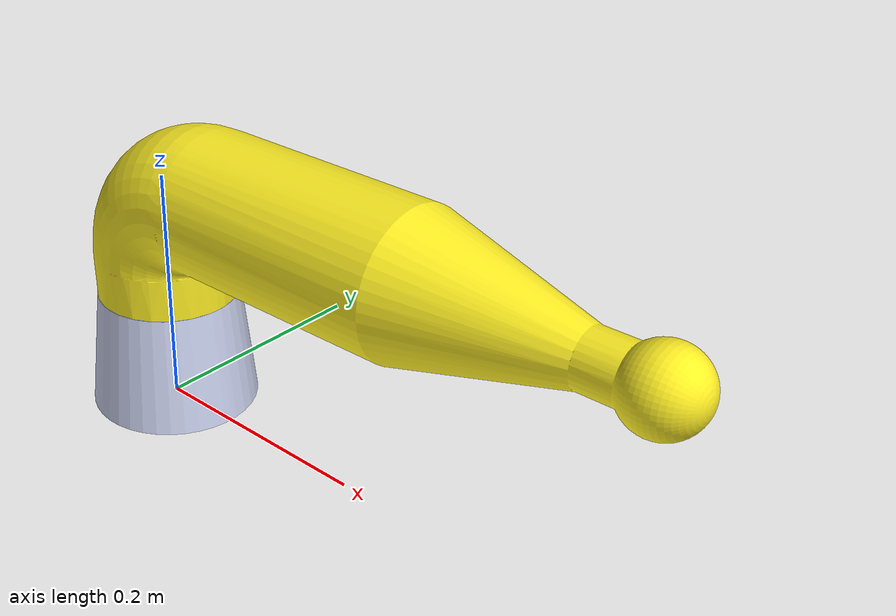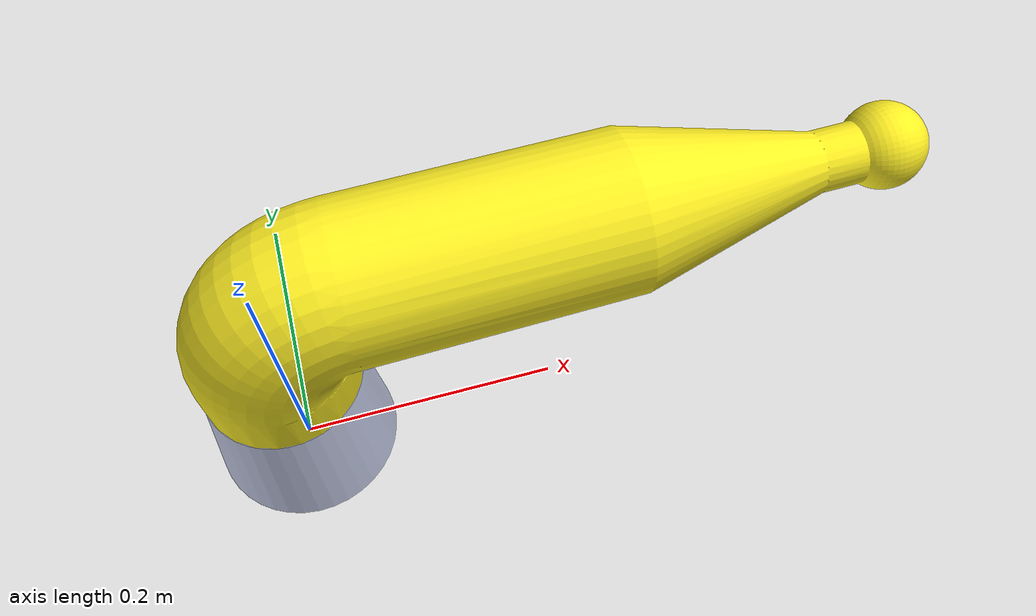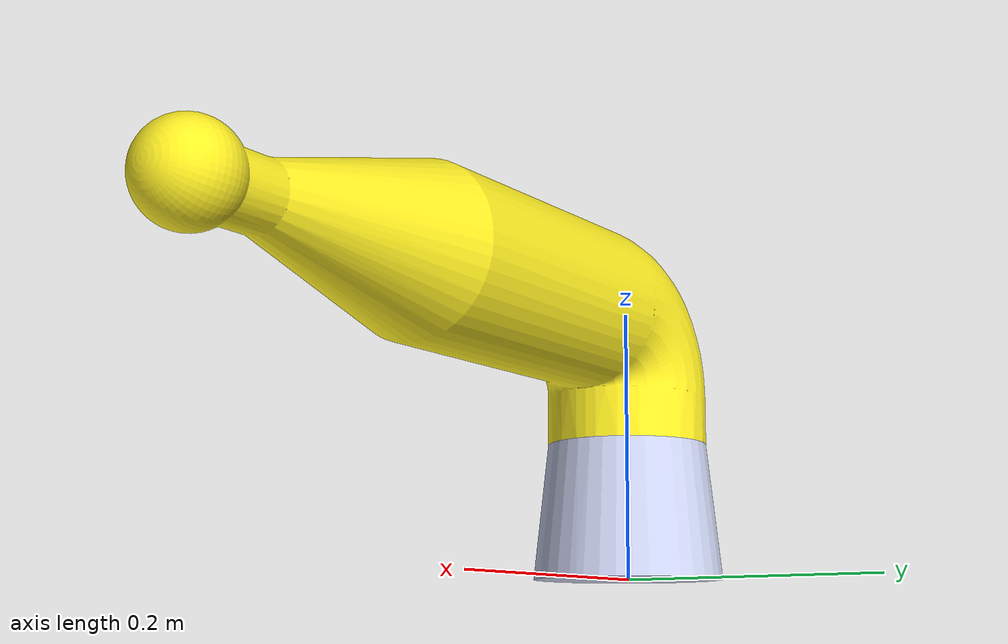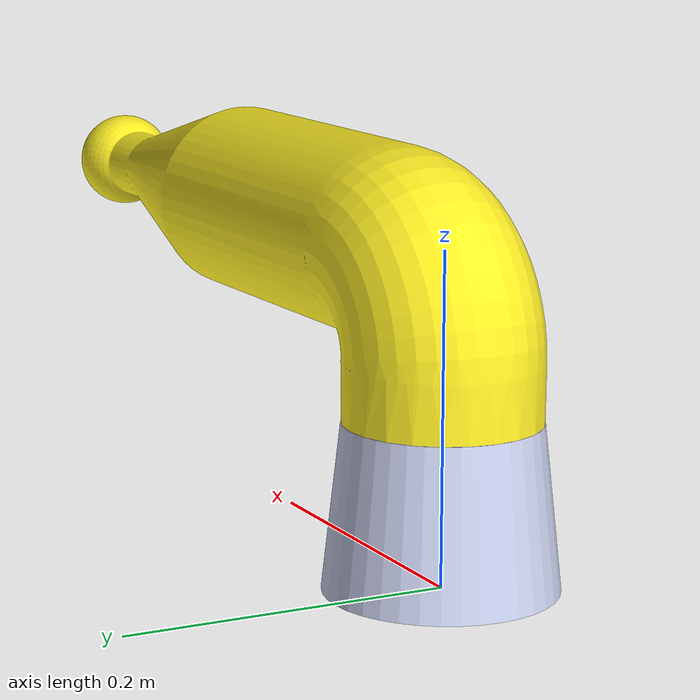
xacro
<?xml version="1.0" ?>
<robot name="onelink_robot" xmlns:xacro="http://wiki.ros.org/xacro">
  <!-- TX90 -->
  <xacro:include filename="$(find onelink_robot)/urdf/onelink_robot_macro.xacro"/>

  <xacro:onelink_robot prefix=""/>

  <!-- Fix robot to Gazebo world -->
  <link name="world"/>

  <joint name="world-base_link-fixed" type="fixed">
    <parent link="world"/>
    <child link="base_link"/>
    <origin xyz="0.0 0.0 0.0" rpy="0.0 0.0 0.0" />
  </joint>
</robot>

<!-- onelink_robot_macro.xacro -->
<robot xmlns:xacro="http://wiki.ros.org/xacro">
<xacro:include filename="$(find onelink_robot)/urdf/onelink_robot_support_macro.xacro"/>
<xacro:macro name="onelink_robot_supprot" params="prefix">

	<xacro:onelink_robot prefix="${prefix}" />

  <!-- transmission list -->
  <transmission name="${prefix}tran1">
    <robotNamespace>/${prefix}</robotNamespace>
    <type>transmission_interface/SimpleTransmission</type>
    <joint name="${prefix}joint_1">
      <hardwareInterface>hardware_interface/PositionJointInterface</hardwareInterface>
    </joint>
    <actuator name="${prefix}motor1">
      <mechanicalReduction>1</mechanicalReduction>
    </actuator>
  </transmission>

  <gazebo reference="${prefix}base_link">
    <material>Gazebo/Yellow</material>
    <turnGravityOff>true</turnGravityOff>
  </gazebo>
  <gazebo reference="${prefix}link_1">
    <material>Gazebo/Yellow</material>
    <turnGravityOff>true</turnGravityOff>
  </gazebo>

  <gazebo>
    <plugin name="gazebo_ros_control" filename="libgazebo_ros_control.so">
      <robotNamespace>/${prefix}</robotNamespace>
      <robotSimType>gazebo_ros_control/DefaultRobotHWSim</robotSimType>
    </plugin>
  </gazebo>
  </xacro:macro>
</robot>

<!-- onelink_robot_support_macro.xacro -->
<robot xmlns:xacro="http://wiki.ros.org/xacro">
  <xacro:macro name="onelink_robot" params="prefix">
    <!-- links: main serial chain -->
  <link name="${prefix}base_link">
      <inertial>
        <origin xyz="8.7018E-07 2.7995E-08 0.047164" rpy="0 0 0" />
        <mass value="1.3101" />
        <inertia ixx="0.0024623" ixy="3.2088E-09" ixz="2.422E-09"
          iyy="0.0024625" iyz="-4.6557E-09"
          izz="0.0027581" />
      </inertial>
      <visual>
        <origin xyz="0 0 0" rpy="0 0 0" />
        <geometry>
          <mesh filename="package://onelink_robot/meshes/visual/base_link.STL" />
        </geometry>
        <material
          name="">
          <color rgba="0.79216 0.81961 0.93333 1" />
        </material>
      </visual>
      <collision>
        <origin xyz="0 0 0" rpy="0 0 0" />
        <geometry>
          <mesh filename="package://onelink_robot/meshes/collision/base_link.STL" />
        </geometry>
      </collision>
    </link>

    <link name="${prefix}link_1">
      <inertial>
        <origin xyz="-0.30846 -0.007069 -0.0093247" rpy="0 0 0" />
        <mass value="4.5602" />
        <inertia ixx="0.0089629" ixy="-0.001234" ixz="-0.0059844"
          iyy="0.06278" iyz="-0.00013714"
          izz="0.061068" />
      </inertial>
      <visual>
        <origin xyz="0 0 0" rpy="0 0 0" />
        <geometry>
          <mesh filename="package://onelink_robot/meshes/visual/link_1.STL" />
        </geometry>
        <material name="">
          <color rgba="1 0.93725 0.13725 1" />
        </material>
      </visual>
      <collision>
        <origin xyz="0 0 0" rpy="0 0 0" />
        <geometry>
          <mesh filename="package://onelink_robot/meshes/collision/link_1.STL" />
        </geometry>
      </collision>
    </link>

    <joint name="${prefix}joint_1" type="continuous">
      <origin xyz="0.45811 0.010499 0.195" rpy="0 0 0" />
      <parent link="${prefix}base_link" />
      <child link="${prefix}link_1" />
      <axis xyz="0 0 1" />
      <dynamics damping="0.0" friction="0.0"/>
    </joint>

  </xacro:macro>
</robot>
